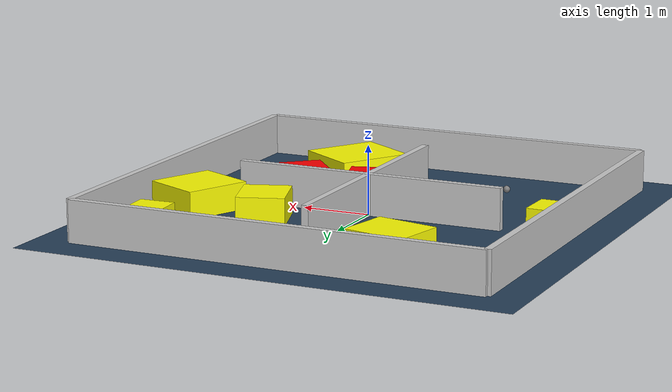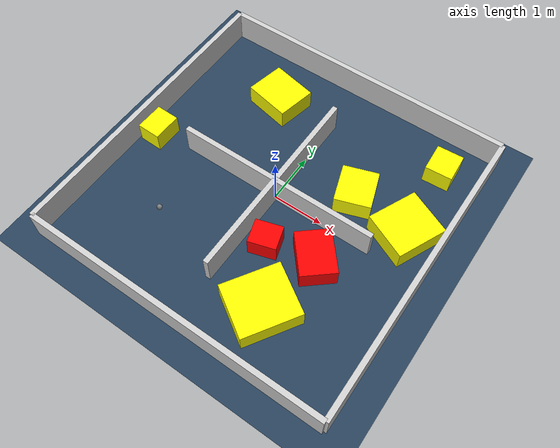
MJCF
<?xml version="1.0" ?>
<mujoco model="generated_environment">
  <option timestep="0.01" integrator="RK4" cone="elliptic"/>
  <default>
    <geom density="1"/>
  </default>
  <asset>
    <texture builtin="gradient" height="3072" rgb1="0.3 0.5 0.7" rgb2="0 0 0" type="skybox" width="512"/>
    <texture builtin="checker" height="300" mark="edge" markrgb="0.8 0.8 0.8" name="groundplane" rgb1="0.2 0.3 0.4" rgb2="0.1 0.2 0.3" type="2d" width="300"/>
    <material name="groundplane" reflectance="0.2" texrepeat="5 5" texture="groundplane" texuniform="true"/>
    <material name="robot" rgba="0.0 1.0 0.0 1"/>
  </asset>
  <worldbody>
    <light dir="0 0 -1" directional="true" pos="0 0 1.5"/>
    <geom condim="4" friction="1.0 0.005 0.001" material="groundplane" name="floor" size="0 0 0.05" type="plane"/>
    <body name="walls">
      <geom name="wall_1" condim="4" pos="-3.0 0.0 0.3" rgba="0.800000011920929 0.800000011920929 0.800000011920929 1.0" size="0.05 3.0 0.3" type="box"/>
      <geom name="wall_2" condim="4" pos="3.0 0.0 0.3" rgba="0.800000011920929 0.800000011920929 0.800000011920929 1.0" size="0.05 3.0 0.3" type="box"/>
      <geom name="wall_3" condim="4" pos="0.0 -3.0 0.3" rgba="0.800000011920929 0.800000011920929 0.800000011920929 1.0" size="3.0 0.05 0.3" type="box"/>
      <geom name="wall_4" condim="4" pos="0.0 3.0 0.3" rgba="0.800000011920929 0.800000011920929 0.800000011920929 1.0" size="3.0 0.05 0.3" type="box"/>
      <geom name="wall_5" condim="4" pos="1.0 0.0 0.3" rgba="0.800000011920929 0.800000011920929 0.800000011920929 1.0" size="1.0 0.05 0.3" type="box"/>
      <geom name="wall_6" condim="4" pos="-1.0 0.0 0.3" rgba="0.800000011920929 0.800000011920929 0.800000011920929 1.0" size="1.0 0.05 0.3" type="box"/>
      <geom name="wall_7" condim="4" pos="0.0 -1.0 0.3" rgba="0.800000011920929 0.800000011920929 0.800000011920929 1.0" size="0.05 1.0 0.3" type="box"/>
      <geom name="wall_8" condim="4" pos="0.0 1.0 0.3" rgba="0.800000011920929 0.800000011920929 0.800000011920929 1.0" size="0.05 1.0 0.3" type="box"/>
    </body>
    <body name="robot">
      <joint name="joint_x" type="slide" pos="0 0 0" axis="1 0 0"/>
      <joint name="joint_y" type="slide" pos="0 0 0" axis="0 1 0"/>
      <geom name="robot" type="sphere" pos="-1.5052214087458833 -1.4685030521046978 0.2" size="0.05" mass="5." friction="1.0 0.005 0.0001" condim="4"/>
      <site name="sensor_ball"/>
    </body>
    <body name="obstacle_1_static">
      <geom name="obstacle_1_static" condim="4" pos="1.336574840561521 -0.7047538731028975 0.2" euler="0 0 310.5596928298711" friction="1.0 0.005 0.001" rgba="1 0 0 1" size="0.4267258176842454 0.33167897047273176 0.2" type="box"/>
    </body>
    <body name="obstacle_2_movable">
      <geom name="obstacle_2_movable" condim="4" pos="-2.6630008916699444 -0.10336864127935907 0.2" euler="0 0 268.6646481068437" friction="1.0 0.005 0.001" rgba="1 1 0 1" size="0.284499005494531 0.23278878466279448 0.2" type="box" mass="0.1"/>
      <joint type="free"/>
    </body>
    <body name="obstacle_3_movable">
      <geom name="obstacle_3_movable" condim="4" pos="1.2148245356777818 0.8257423799500851 0.2" euler="0 0 18.698807728275696" friction="1.0 0.005 0.001" rgba="1 1 0 1" size="0.3430442513405056 0.38091354332998056 0.2" type="box" mass="0.1"/>
      <joint type="free"/>
    </body>
    <body name="obstacle_4_movable">
      <geom name="obstacle_4_movable" condim="4" pos="-1.1959447376944894 1.8937192146708992 0.2" euler="0 0 78.1376815543961" friction="1.0 0.005 0.001" rgba="1 1 0 1" size="0.3908194755470215 0.4598421917177261 0.2" type="box" mass="0.1"/>
      <joint type="free"/>
    </body>
    <body name="obstacle_5_static">
      <geom name="obstacle_5_static" condim="4" pos="0.4407905245064936 -0.9131902608682405 0.2" euler="0 0 196.85393755549782" friction="1.0 0.005 0.001" rgba="1 0 0 1" size="0.263210766424089 0.23396163936538128 0.2" type="box"/>
    </body>
    <body name="obstacle_6_movable">
      <geom name="obstacle_6_movable" condim="4" pos="1.0757587636992887 -1.9384579735008276 0.2" euler="0 0 147.51589879488733" friction="1.0 0.005 0.001" rgba="1 1 0 1" size="0.5072256344537458 0.5590104301889894 0.2" type="box" mass="0.1"/>
      <joint type="free"/>
    </body>
    <body name="obstacle_7_movable">
      <geom name="obstacle_7_movable" condim="4" pos="2.332218730909826 0.6706778876836692 0.2" euler="0 0 245.59452241303265" friction="1.0 0.005 0.001" rgba="1 1 0 1" size="0.4927248384660953 0.45363957781720116 0.2" type="box" mass="0.1"/>
      <joint type="free"/>
    </body>
    <body name="obstacle_8_movable">
      <geom name="obstacle_8_movable" condim="4" pos="2.2663327136713236 2.1949936047900516 0.2" euler="0 0 183.30655653946556" friction="1.0 0.005 0.001" rgba="1 1 0 1" size="0.25791753034944787 0.2833446483344142 0.2" type="box" mass="0.1"/>
      <joint type="free"/>
    </body>
  </worldbody>
  <actuator>
    <motor name="actuator_x" joint="joint_x" gear="1" ctrlrange="-1 1"/>
    <motor name="actuator_y" joint="joint_y" gear="1" ctrlrange="-1 1"/>
  </actuator>
</mujoco>
